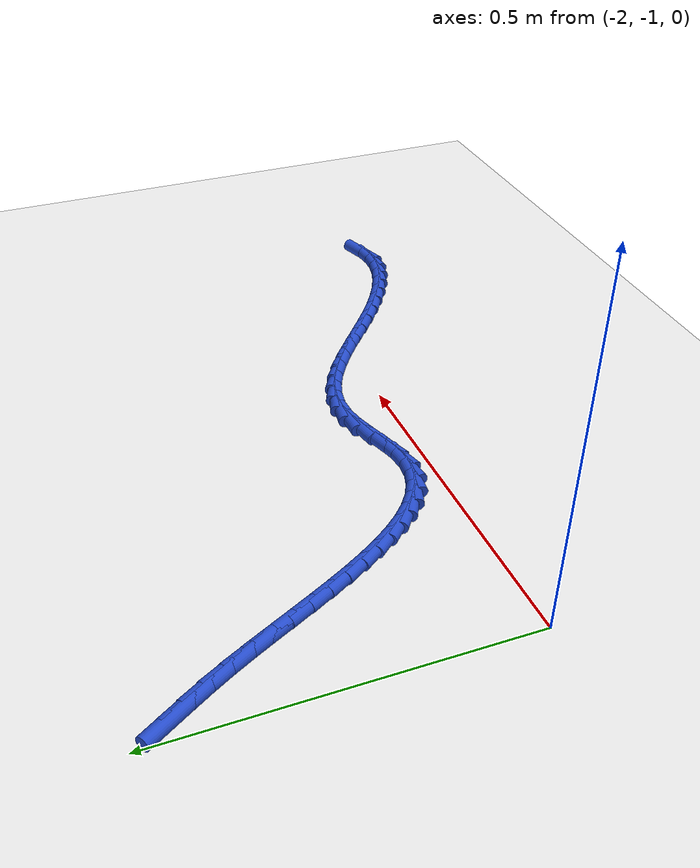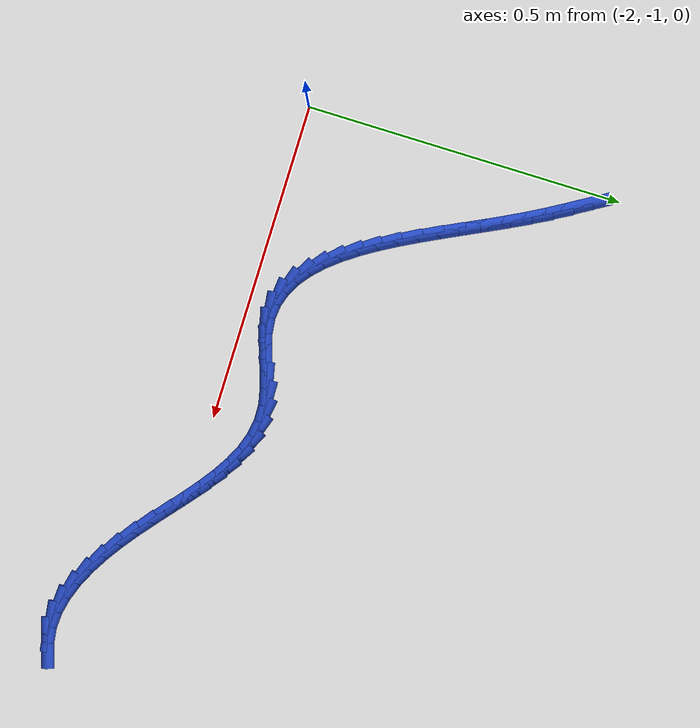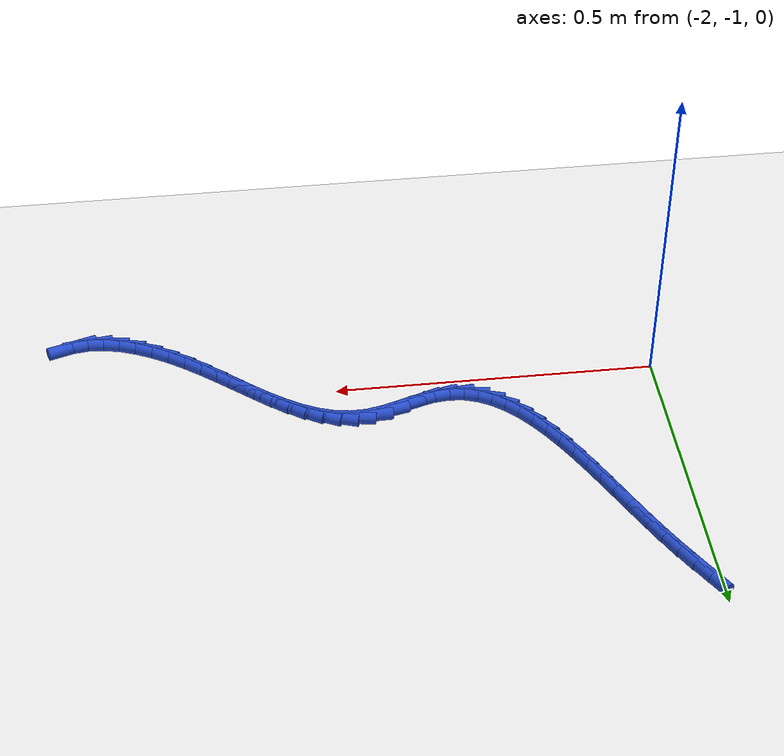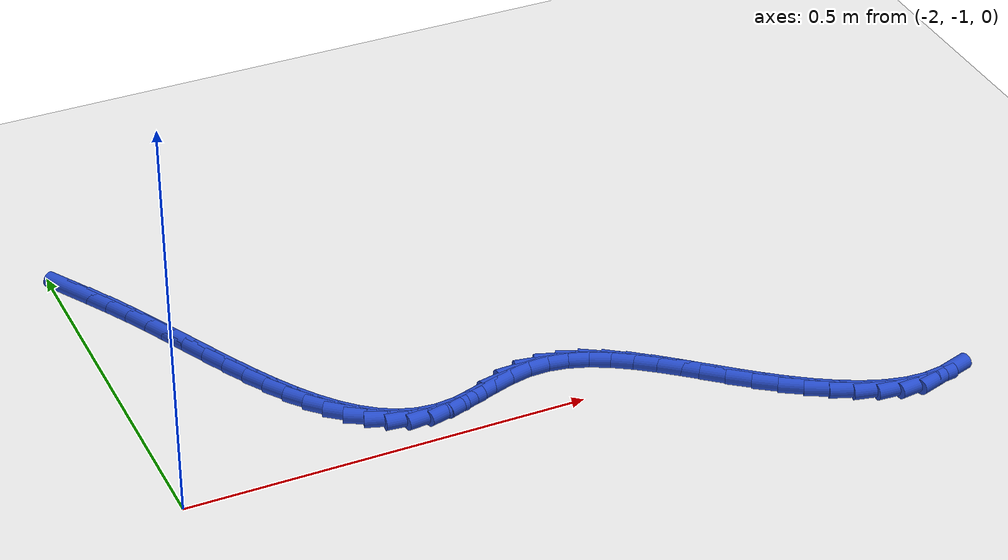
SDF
<sdf version="1.6">
 <world name="default">
  <model name="ground_plane">
   <static>1</static>
   <link name="link">
    <collision name="collision">
     <geometry><plane><normal>0 0 1</normal><size>100 100</size></plane></geometry>
     <surface><friction><ode><mu>100</mu><mu2>50</mu2></ode></friction></surface>
    </collision>
    <visual name="visual">
     <cast_shadows>0</cast_shadows>
     <geometry><plane><normal>0 0 1</normal><size>100 100</size></plane></geometry>
     <material>
      <script><uri>file://media/materials/scripts/gazebo.material</uri><name>Gazebo/WhiteGlow</name></script>
     </material>
    </visual>
   </link>
  </model>
  <model name="line">
   <link name="link_146">
    <pose>-1.9808855616506502 -0.548755870905478 0.01 0 1.57 -1.034905001649511</pose>
    <collision name="collision">
     <geometry><cylinder><radius>0.01</radius><length>0.08</length></cylinder></geometry>
    </collision>
    <visual name="visual">
     <material>
      <script><name>Gazebo/Blue</name><uri>file://media/materials/scripts/gazebo.material</uri></script>
     </material>
     <geometry><cylinder><radius>0.01</radius><length>0.08</length></cylinder></geometry>
    </visual>
   </link>
   <link name="link_147">
    <pose>-1.965581135518414 -0.5745270446974411 0.01 0 1.57 -1.042363699648547</pose>
    <collision name="collision">
     <geometry><cylinder><radius>0.01</radius><length>0.08</length></cylinder></geometry>
    </collision>
    <visual name="visual">
     <material>
      <script><name>Gazebo/Blue</name><uri>file://media/materials/scripts/gazebo.material</uri></script>
     </material>
     <geometry><cylinder><radius>0.01</radius><length>0.08</length></cylinder></geometry>
    </visual>
   </link>
   <link name="link_148">
    <pose>-1.9499165714984699 -0.601358497236638 0.01 0 1.57 -1.0668721601064974</pose>
    <collision name="collision">
     <geometry><cylinder><radius>0.01</radius><length>0.08</length></cylinder></geometry>
    </collision>
    <visual name="visual">
     <material>
      <script><name>Gazebo/Blue</name><uri>file://media/materials/scripts/gazebo.material</uri></script>
     </material>
     <geometry><cylinder><radius>0.01</radius><length>0.08</length></cylinder></geometry>
    </visual>
   </link>
   <link name="link_149">
    <pose>-1.9343929006005507 -0.6295112423088124 0.01 0 1.57 -1.0929303837877846</pose>
    <collision name="collision">
     <geometry><cylinder><radius>0.01</radius><length>0.08</length></cylinder></geometry>
    </collision>
    <visual name="visual">
     <material>
      <script><name>Gazebo/Blue</name><uri>file://media/materials/scripts/gazebo.material</uri></script>
     </material>
     <geometry><cylinder><radius>0.01</radius><length>0.08</length></cylinder></geometry>
    </visual>
   </link>
   <link name="link_150">
    <pose>-1.9191808541888646 -0.6588837189424226 0.01 0 1.57 -1.1092509679468234</pose>
    <collision name="collision">
     <geometry><cylinder><radius>0.01</radius><length>0.08</length></cylinder></geometry>
    </collision>
    <visual name="visual">
     <material>
      <script><name>Gazebo/Blue</name><uri>file://media/materials/scripts/gazebo.material</uri></script>
     </material>
     <geometry><cylinder><radius>0.01</radius><length>0.08</length></cylinder></geometry>
    </visual>
   </link>
   <link name="link_151">
    <pose>-1.9041694041287929 -0.68906507463842 0.01 0 1.57 -1.1164509713159874</pose>
    <collision name="collision">
     <geometry><cylinder><radius>0.01</radius><length>0.08</length></cylinder></geometry>
    </collision>
    <visual name="visual">
     <material>
      <script><name>Gazebo/Blue</name><uri>file://media/materials/scripts/gazebo.material</uri></script>
     </material>
     <geometry><cylinder><radius>0.01</radius><length>0.08</length></cylinder></geometry>
    </visual>
   </link>
   <link name="link_152">
    <pose>-1.889238490745713 -0.7196345428440482 0.01 0 1.57 -1.1149853478303886</pose>
    <collision name="collision">
     <geometry><cylinder><radius>0.01</radius><length>0.08</length></cylinder></geometry>
    </collision>
    <visual name="visual">
     <material>
      <script><name>Gazebo/Blue</name><uri>file://media/materials/scripts/gazebo.material</uri></script>
     </material>
     <geometry><cylinder><radius>0.01</radius><length>0.08</length></cylinder></geometry>
    </visual>
   </link>
   <link name="link_153">
    <pose>-1.8742680543649997 -0.7501713570065505 0.01 0 1.57 -1.1048027455781801</pose>
    <collision name="collision">
     <geometry><cylinder><radius>0.01</radius><length>0.08</length></cylinder></geometry>
    </collision>
    <visual name="visual">
     <material>
      <script><name>Gazebo/Blue</name><uri>file://media/materials/scripts/gazebo.material</uri></script>
     </material>
     <geometry><cylinder><radius>0.01</radius><length>0.08</length></cylinder></geometry>
    </visual>
   </link>
   <link name="link_154">
    <pose>-1.85913803531203 -0.7802547505731707 0.01 0 1.57 -1.085343175706138</pose>
    <collision name="collision">
     <geometry><cylinder><radius>0.01</radius><length>0.08</length></cylinder></geometry>
    </collision>
    <visual name="visual">
     <material>
      <script><name>Gazebo/Blue</name><uri>file://media/materials/scripts/gazebo.material</uri></script>
     </material>
     <geometry><cylinder><radius>0.01</radius><length>0.08</length></cylinder></geometry>
    </visual>
   </link>
   <link name="link_155">
    <pose>-1.8437283739121804 -0.8094639569911523 0.01 0 1.57 -1.0554836207870608</pose>
    <collision name="collision">
     <geometry><cylinder><radius>0.01</radius><length>0.08</length></cylinder></geometry>
    </collision>
    <visual name="visual">
     <material>
      <script><name>Gazebo/Blue</name><uri>file://media/materials/scripts/gazebo.material</uri></script>
     </material>
     <geometry><cylinder><radius>0.01</radius><length>0.08</length></cylinder></geometry>
    </visual>
   </link>
   <link name="link_156">
    <pose>-1.8279190104908283 -0.8373782097077388 0.01 0 1.57 -1.013431967985116</pose>
    <collision name="collision">
     <geometry><cylinder><radius>0.01</radius><length>0.08</length></cylinder></geometry>
    </collision>
    <visual name="visual">
     <material>
      <script><name>Gazebo/Blue</name><uri>file://media/materials/scripts/gazebo.material</uri></script>
     </material>
     <geometry><cylinder><radius>0.01</radius><length>0.08</length></cylinder></geometry>
    </visual>
   </link>
   <link name="link_157">
    <pose>-1.8115898853733483 -0.8635767421701739 0.01 0 1.57 -0.9565780712876041</pose>
    <collision name="collision">
     <geometry><cylinder><radius>0.01</radius><length>0.08</length></cylinder></geometry>
    </collision>
    <visual name="visual">
     <material>
      <script><name>Gazebo/Blue</name><uri>file://media/materials/scripts/gazebo.material</uri></script>
     </material>
     <geometry><cylinder><radius>0.01</radius><length>0.08</length></cylinder></geometry>
    </visual>
   </link>
   <link name="link_158">
    <pose>-1.794620938885118 -0.8876387878257008 0.01 0 1.57 -0.8813457349896506</pose>
    <collision name="collision">
     <geometry><cylinder><radius>0.01</radius><length>0.08</length></cylinder></geometry>
    </collision>
    <visual name="visual">
     <material>
      <script><name>Gazebo/Blue</name><uri>file://media/materials/scripts/gazebo.material</uri></script>
     </material>
     <geometry><cylinder><radius>0.01</radius><length>0.08</length></cylinder></geometry>
    </visual>
   </link>
   <link name="link_159">
    <pose>-1.7768921113515128 -0.9091435801215634 0.01 0 1.57 -0.7831901509247212</pose>
    <collision name="collision">
     <geometry><cylinder><radius>0.01</radius><length>0.08</length></cylinder></geometry>
    </collision>
    <visual name="visual">
     <material>
      <script><name>Gazebo/Blue</name><uri>file://media/materials/scripts/gazebo.material</uri></script>
     </material>
     <geometry><cylinder><radius>0.01</radius><length>0.08</length></cylinder></geometry>
    </visual>
   </link>
   <link name="link_160">
    <pose>-1.7582833430979106 -0.9276703525050055 0.01 0 1.57 -0.6571139885987338</pose>
    <collision name="collision">
     <geometry><cylinder><radius>0.01</radius><length>0.08</length></cylinder></geometry>
    </collision>
    <visual name="visual">
     <material>
      <script><name>Gazebo/Blue</name><uri>file://media/materials/scripts/gazebo.material</uri></script>
     </material>
     <geometry><cylinder><radius>0.01</radius><length>0.08</length></cylinder></geometry>
    </visual>
   </link>
   <link name="link_161">
    <pose>-1.738674574449686 -0.9427983384232699 0.01 0 1.57 -0.4994136083254274</pose>
    <collision name="collision">
     <geometry><cylinder><radius>0.01</radius><length>0.08</length></cylinder></geometry>
    </collision>
    <visual name="visual">
     <material>
      <script><name>Gazebo/Blue</name><uri>file://media/materials/scripts/gazebo.material</uri></script>
     </material>
     <geometry><cylinder><radius>0.01</radius><length>0.08</length></cylinder></geometry>
    </visual>
   </link>
   <link name="link_162">
    <pose>-1.7179457457322167 -0.9541067713236008 0.01 0 1.57 -0.3112732549545442</pose>
    <collision name="collision">
     <geometry><cylinder><radius>0.01</radius><length>0.08</length></cylinder></geometry>
    </collision>
    <visual name="visual">
     <material>
      <script><name>Gazebo/Blue</name><uri>file://media/materials/scripts/gazebo.material</uri></script>
     </material>
     <geometry><cylinder><radius>0.01</radius><length>0.08</length></cylinder></geometry>
    </visual>
   </link>
   <link name="link_163">
    <pose>-1.6959767972708786 -0.9611748846532415 0.01 0 1.57 -0.10281310334430839</pose>
    <collision name="collision">
     <geometry><cylinder><radius>0.01</radius><length>0.08</length></cylinder></geometry>
    </collision>
    <visual name="visual">
     <material>
      <script><name>Gazebo/Blue</name><uri>file://media/materials/scripts/gazebo.material</uri></script>
     </material>
     <geometry><cylinder><radius>0.01</radius><length>0.08</length></cylinder></geometry>
    </visual>
   </link>
   <link name="link_164">
    <pose>-1.6726476693910475 -0.9635819118594354 0.01 0 1.57 0.10706564668475435</pose>
    <collision name="collision">
     <geometry><cylinder><radius>0.01</radius><length>0.08</length></cylinder></geometry>
    </collision>
    <visual name="visual">
     <material>
      <script><name>Gazebo/Blue</name><uri>file://media/materials/scripts/gazebo.material</uri></script>
     </material>
     <geometry><cylinder><radius>0.01</radius><length>0.08</length></cylinder></geometry>
    </visual>
   </link>
   <link name="link_165">
    <pose>-1.647840379115541 -0.960915707877422 0.01 0 1.57 0.2678715627880072</pose>
    <collision name="collision">
     <geometry><cylinder><radius>0.01</radius><length>0.08</length></cylinder></geometry>
    </collision>
    <visual name="visual">
     <material>
      <script><name>Gazebo/Blue</name><uri>file://media/materials/scripts/gazebo.material</uri></script>
     </material>
     <geometry><cylinder><radius>0.01</radius><length>0.08</length></cylinder></geometry>
    </visual>
   </link>
   <link name="link_166">
    <pose>-1.6216702850543818 -0.9537328540704184 0.01 0 1.57 0.33202695794295045</pose>
    <collision name="collision">
     <geometry><cylinder><radius>0.01</radius><length>0.08</length></cylinder></geometry>
    </collision>
    <visual name="visual">
     <material>
      <script><name>Gazebo/Blue</name><uri>file://media/materials/scripts/gazebo.material</uri></script>
     </material>
     <geometry><cylinder><radius>0.01</radius><length>0.08</length></cylinder></geometry>
    </visual>
   </link>
   <link name="link_167">
    <pose>-1.5946965882551603 -0.9444325604743734 0.01 0 1.57 0.313646073583269</pose>
    <collision name="collision">
     <geometry><cylinder><radius>0.01</radius><length>0.08</length></cylinder></geometry>
    </collision>
    <visual name="visual">
     <material>
      <script><name>Gazebo/Blue</name><uri>file://media/materials/scripts/gazebo.material</uri></script>
     </material>
     <geometry><cylinder><radius>0.01</radius><length>0.08</length></cylinder></geometry>
    </visual>
   </link>
   <link name="link_168">
    <pose>-1.5675282044299572 -0.9356204294358641 0.01 0 1.57 0.2105780076384763</pose>
    <collision name="collision">
     <geometry><cylinder><radius>0.01</radius><length>0.08</length></cylinder></geometry>
    </collision>
    <visual name="visual">
     <material>
      <script><name>Gazebo/Blue</name><uri>file://media/materials/scripts/gazebo.material</uri></script>
     </material>
     <geometry><cylinder><radius>0.01</radius><length>0.08</length></cylinder></geometry>
    </visual>
   </link>
   <link name="link_169">
    <pose>-1.5407739874549444 -0.9299018015653996 0.01 0 1.57 0.02687138431706055</pose>
    <collision name="collision">
     <geometry><cylinder><radius>0.01</radius><length>0.08</length></cylinder></geometry>
    </collision>
    <visual name="visual">
     <material>
      <script><name>Gazebo/Blue</name><uri>file://media/materials/scripts/gazebo.material</uri></script>
     </material>
     <geometry><cylinder><radius>0.01</radius><length>0.08</length></cylinder></geometry>
    </visual>
   </link>
   <link name="link_170">
    <pose>-1.514883058601286 -0.929205908963093 0.01 0 1.57 -0.1626588460883856</pose>
    <collision name="collision">
     <geometry><cylinder><radius>0.01</radius><length>0.08</length></cylinder></geometry>
    </collision>
    <visual name="visual">
     <material>
      <script><name>Gazebo/Blue</name><uri>file://media/materials/scripts/gazebo.material</uri></script>
     </material>
     <geometry><cylinder><radius>0.01</radius><length>0.08</length></cylinder></geometry>
    </visual>
   </link>
   <link name="link_171">
    <pose>-1.4897990591449013 -0.9333224122457968 0.01 0 1.57 -0.32733704549422454</pose>
    <collision name="collision">
     <geometry><cylinder><radius>0.01</radius><length>0.08</length></cylinder></geometry>
    </collision>
    <visual name="visual">
     <material>
      <script><name>Gazebo/Blue</name><uri>file://media/materials/scripts/gazebo.material</uri></script>
     </material>
     <geometry><cylinder><radius>0.01</radius><length>0.08</length></cylinder></geometry>
    </visual>
   </link>
   <link name="link_172">
    <pose>-1.465365879622057 -0.9416187518831736 0.01 0 1.57 -0.45944077185158855</pose>
    <collision name="collision">
     <geometry><cylinder><radius>0.01</radius><length>0.08</length></cylinder></geometry>
    </collision>
    <visual name="visual">
     <material>
      <script><name>Gazebo/Blue</name><uri>file://media/materials/scripts/gazebo.material</uri></script>
     </material>
     <geometry><cylinder><radius>0.01</radius><length>0.08</length></cylinder></geometry>
    </visual>
   </link>
   <link name="link_173">
    <pose>-1.4414274105690195 -0.9534623683448866 0.01 0 1.57 -0.5588557213460692</pose>
    <collision name="collision">
     <geometry><cylinder><radius>0.01</radius><length>0.08</length></cylinder></geometry>
    </collision>
    <visual name="visual">
     <material>
      <script><name>Gazebo/Blue</name><uri>file://media/materials/scripts/gazebo.material</uri></script>
     </material>
     <geometry><cylinder><radius>0.01</radius><length>0.08</length></cylinder></geometry>
    </visual>
   </link>
   <link name="link_174">
    <pose>-1.4178275425220572 -0.9682207021005993 0.01 0 1.57 -0.6290663818768107</pose>
    <collision name="collision">
     <geometry><cylinder><radius>0.01</radius><length>0.08</length></cylinder></geometry>
    </collision>
    <visual name="visual">
     <material>
      <script><name>Gazebo/Blue</name><uri>file://media/materials/scripts/gazebo.material</uri></script>
     </material>
     <geometry><cylinder><radius>0.01</radius><length>0.08</length></cylinder></geometry>
    </visual>
   </link>
   <link name="link_175">
    <pose>-1.3944101660174368 -0.9852611936199744 0.01 0 1.57 -0.6741487677396282</pose>
    <collision name="collision">
     <geometry><cylinder><radius>0.01</radius><length>0.08</length></cylinder></geometry>
    </collision>
    <visual name="visual">
     <material>
      <script><name>Gazebo/Blue</name><uri>file://media/materials/scripts/gazebo.material</uri></script>
     </material>
     <geometry><cylinder><radius>0.01</radius><length>0.08</length></cylinder></geometry>
    </visual>
   </link>
   <link name="link_176">
    <pose>-1.371019171591425 -1.003951283372674 0.01 0 1.57 -0.6974052220145437</pose>
    <collision name="collision">
     <geometry><cylinder><radius>0.01</radius><length>0.08</length></cylinder></geometry>
    </collision>
    <visual name="visual">
     <material>
      <script><name>Gazebo/Blue</name><uri>file://media/materials/scripts/gazebo.material</uri></script>
     </material>
     <geometry><cylinder><radius>0.01</radius><length>0.08</length></cylinder></geometry>
    </visual>
   </link>
   <link name="link_177">
    <pose>-1.3474984497802887 -1.023658411828363 0.01 0 1.57 -0.7009727566268857</pose>
    <collision name="collision">
     <geometry><cylinder><radius>0.01</radius><length>0.08</length></cylinder></geometry>
    </collision>
    <visual name="visual">
     <material>
      <script><name>Gazebo/Blue</name><uri>file://media/materials/scripts/gazebo.material</uri></script>
     </material>
     <geometry><cylinder><radius>0.01</radius><length>0.08</length></cylinder></geometry>
    </visual>
   </link>
   <link name="link_178">
    <pose>-1.3236918911202946 -1.0437500194567033 0.01 0 1.57 -0.685824397102513</pose>
    <collision name="collision">
     <geometry><cylinder><radius>0.01</radius><length>0.08</length></cylinder></geometry>
    </collision>
    <visual name="visual">
     <material>
      <script><name>Gazebo/Blue</name><uri>file://media/materials/scripts/gazebo.material</uri></script>
     </material>
     <geometry><cylinder><radius>0.01</radius><length>0.08</length></cylinder></geometry>
    </visual>
   </link>
   <link name="link_179">
    <pose>-1.29944338614771 -1.063593546727358 0.01 0 1.57 -0.6519362081607444</pose>
    <collision name="collision">
     <geometry><cylinder><radius>0.01</radius><length>0.08</length></cylinder></geometry>
    </collision>
    <visual name="visual">
     <material>
      <script><name>Gazebo/Blue</name><uri>file://media/materials/scripts/gazebo.material</uri></script>
     </material>
     <geometry><cylinder><radius>0.01</radius><length>0.08</length></cylinder></geometry>
    </visual>
   </link>
   <link name="link_180">
    <pose>-1.2745985248659164 -1.082556736671836 0.01 0 1.57 -0.6013660734536483</pose>
    <collision name="collision">
     <geometry><cylinder><radius>0.01</radius><length>0.08</length></cylinder></geometry>
    </collision>
    <visual name="visual">
     <material>
      <script><name>Gazebo/Blue</name><uri>file://media/materials/scripts/gazebo.material</uri></script>
     </material>
     <geometry><cylinder><radius>0.01</radius><length>0.08</length></cylinder></geometry>
    </visual>
   </link>
   <link name="link_181">
    <pose>-1.2491321464651302 -1.1000303429890461 0.01 0 1.57 -0.5369031173078584</pose>
    <collision name="collision">
     <geometry><cylinder><radius>0.01</radius><length>0.08</length></cylinder></geometry>
    </collision>
    <visual name="visual">
     <material>
      <script><name>Gazebo/Blue</name><uri>file://media/materials/scripts/gazebo.material</uri></script>
     </material>
     <geometry><cylinder><radius>0.01</radius><length>0.08</length></cylinder></geometry>
    </visual>
   </link>
   <link name="link_182">
    <pose>-1.2232369206221125 -1.1154439004719838 0.01 0 1.57 -0.45538852500904214</pose>
    <collision name="collision">
     <geometry><cylinder><radius>0.01</radius><length>0.08</length></cylinder></geometry>
    </collision>
    <visual name="visual">
     <material>
      <script><name>Gazebo/Blue</name><uri>file://media/materials/scripts/gazebo.material</uri></script>
     </material>
     <geometry><cylinder><radius>0.01</radius><length>0.08</length></cylinder></geometry>
    </visual>
   </link>
   <link name="link_183">
    <pose>-1.1971264603217462 -1.1282306725212226 0.01 0 1.57 -0.352079970513056</pose>
    <collision name="collision">
     <geometry><cylinder><radius>0.01</radius><length>0.08</length></cylinder></geometry>
    </collision>
    <visual name="visual">
     <material>
      <script><name>Gazebo/Blue</name><uri>file://media/materials/scripts/gazebo.material</uri></script>
     </material>
     <geometry><cylinder><radius>0.01</radius><length>0.08</length></cylinder></geometry>
    </visual>
   </link>
   <link name="link_184">
    <pose>-1.1710143785489153 -1.1378239225373366 0.01 0 1.57 -0.22151549231446377</pose>
    <collision name="collision">
     <geometry><cylinder><radius>0.01</radius><length>0.08</length></cylinder></geometry>
    </collision>
    <visual name="visual">
     <material>
      <script><name>Gazebo/Blue</name><uri>file://media/materials/scripts/gazebo.material</uri></script>
     </material>
     <geometry><cylinder><radius>0.01</radius><length>0.08</length></cylinder></geometry>
    </visual>
   </link>
   <link name="link_185">
    <pose>-1.1451142882885041 -1.1436569139208992 0.01 0 1.57 -0.05904909686973835</pose>
    <collision name="collision">
     <geometry><cylinder><radius>0.01</radius><length>0.08</length></cylinder></geometry>
    </collision>
    <visual name="visual">
     <material>
      <script><name>Gazebo/Blue</name><uri>file://media/materials/scripts/gazebo.material</uri></script>
     </material>
     <geometry><cylinder><radius>0.01</radius><length>0.08</length></cylinder></geometry>
    </visual>
   </link>
   <link name="link_186">
    <pose>-1.1196398025253949 -1.1451629100724845 0.01 0 1.57 0.13182140552410382</pose>
    <collision name="collision">
     <geometry><cylinder><radius>0.01</radius><length>0.08</length></cylinder></geometry>
    </collision>
    <visual name="visual">
     <material>
      <script><name>Gazebo/Blue</name><uri>file://media/materials/scripts/gazebo.material</uri></script>
     </material>
     <geometry><cylinder><radius>0.01</radius><length>0.08</length></cylinder></geometry>
    </visual>
   </link>
   <link name="link_187">
    <pose>-1.0947807743315052 -1.1418668440980742 0.01 0 1.57 0.3091827000780453</pose>
    <collision name="collision">
     <geometry><cylinder><radius>0.01</radius><length>0.08</length></cylinder></geometry>
    </collision>
    <visual name="visual">
     <material>
      <script><name>Gazebo/Blue</name><uri>file://media/materials/scripts/gazebo.material</uri></script>
     </material>
     <geometry><cylinder><radius>0.01</radius><length>0.08</length></cylinder></geometry>
    </visual>
   </link>
  </model>
 </world>
</sdf>
